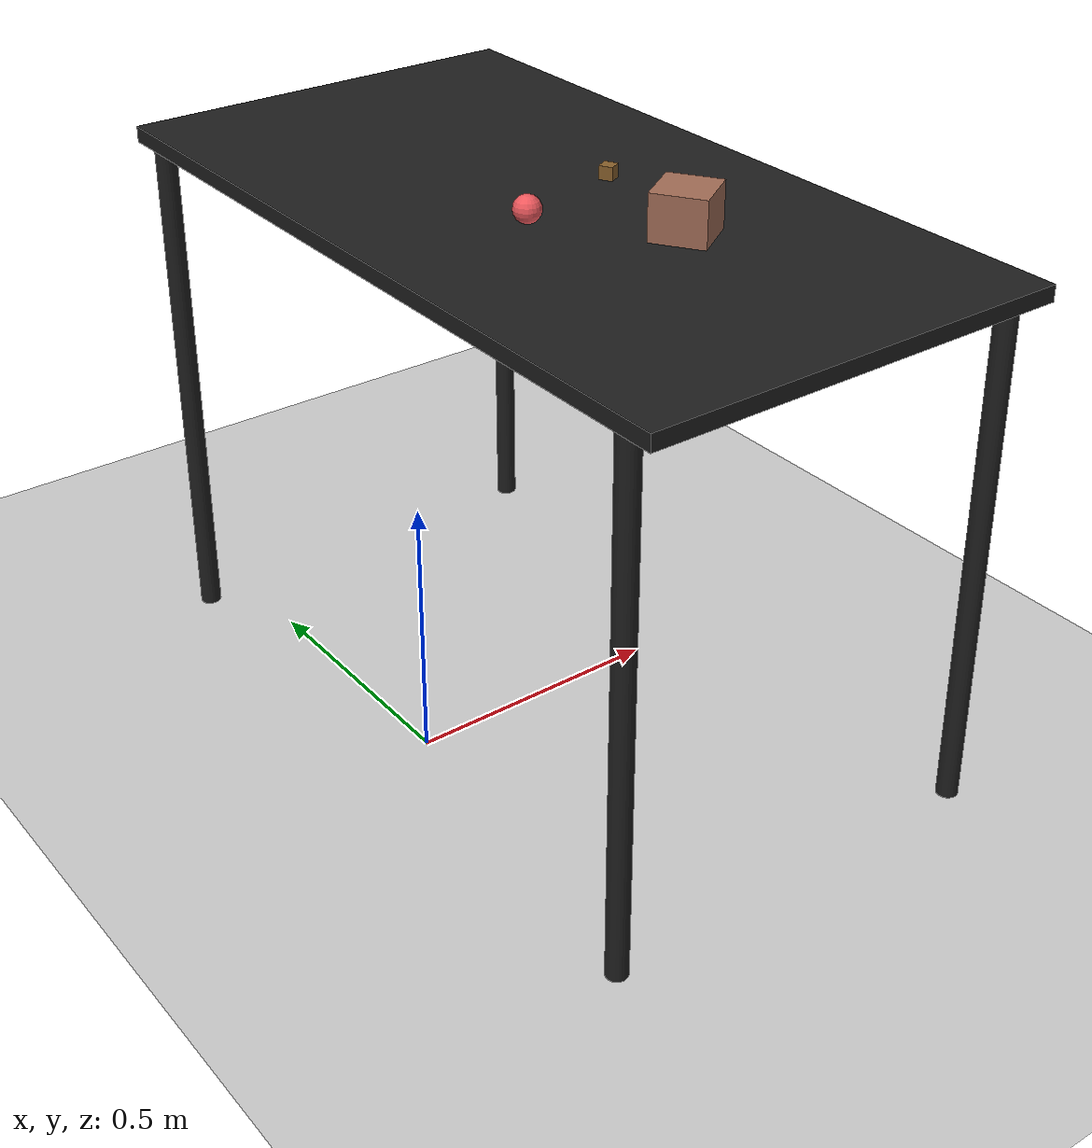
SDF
<?xml version="1.0" ?>
<sdf version="1.6">
  <world name="arm_world">
    <plugin filename="gz-sim-physics-system" name="gz::sim::systems::Physics">
      <engine>
        <filename>libgz-physics-bullet-featherstone-plugin.so</filename>
      </engine>
    </plugin>
    <plugin filename="gz-sim-user-commands-system" name="gz::sim::systems::UserCommands"/>
    <plugin filename="gz-sim-scene-broadcaster-system" name="gz::sim::systems::SceneBroadcaster"/>
    <plugin filename="gz-sim-sensors-system" name="gz::sim::systems::Sensors">
      <render_engine>ogre2</render_engine>
    </plugin>
    <gravity>0.0 0.0 -9.8</gravity>
    <scene>
      <shadows>false</shadows>
    </scene>
    <gui>
      <camera name="user_camera">
        <pose>0.75 -0.75 1.4 0 0.29 2.21</pose>
      </camera>
    </gui>
    <include>
      <uri>https://fuel.gazebosim.org/1.0/OpenRobotics/models/Sun</uri>
    </include>
    <model name="table">
      <static>true</static>
      <include>
        <uri>model://table</uri>
      </include>
      <pose>0.29 0 0 0 0 1.5708</pose>
    </model>
    <model name="ground_plane">
      <static>true</static>
      <link name="link">
        <collision name="collision">
          <geometry>
            <plane>
              <normal>0 0 1</normal>
            </plane>
          </geometry>
          <surface>
            <friction>
              <ode>
                <mu>1.0</mu>
                <mu2>1.0</mu2>
              </ode>
            </friction>
          </surface>
        </collision>
        <visual name="visual">
          <geometry>
            <plane>
              <normal>0 0 1</normal>
              <size>100 100</size>
            </plane>
          </geometry>
          <material>
            <ambient>0.8 0.8 0.8 1</ambient>
            <diffuse>0.8 0.8 0.8 1</diffuse>
            <specular>0.8 0.8 0.8 1</specular>
          </material>
        </visual>
      </link>
    </model>
    <model name="sphere_m_0">
      <pose>0.175 -0.088 1.05 0 0 0.05</pose>
      <link name="sphere_m_0_link">
        <inertial>
          <mass>0.05</mass>
          <inertia>
            <ixx>2.04e-7</ixx>
            <iyy>2.04e-7</iyy>
            <izz>3.9e-8</izz>
            <ixy>0</ixy>
            <ixz>0</ixz>
            <iyz>0</iyz>
          </inertia>
        </inertial>
        <collision name="sphere_m_0_collision">
          <geometry>
            <sphere>
              <radius>0.025</radius>
            </sphere>
          </geometry>
          <surface>
            <friction>
              <ode>
                <mu>0.8</mu>
                <mu2>0.8</mu2>
                <fdir1>0 0 1</fdir1>
                <slip1>0.001</slip1>
                <slip2>0.001</slip2>
              </ode>
              <torsional>
                <coefficient>0.1</coefficient>
                <surface_radius>0.015</surface_radius>
                <use_patch_radius>true</use_patch_radius>
              </torsional>
            </friction>
            <contact>
              <ode>
                <kp>1e5</kp>
                <kd>10</kd>
                <max_vel>0.1</max_vel>
                <min_depth>0.001</min_depth>
                <soft_cfm>0.01</soft_cfm>
                <soft_erp>0.2</soft_erp>
              </ode>
            </contact>
            <bounce>
              <restitution_coefficient>0.2</restitution_coefficient>
              <threshold>0.01</threshold>
            </bounce>
          </surface>
        </collision>
        <visual name="sphere_m_0_visual">
          <geometry>
            <sphere>
              <radius>0.025</radius>
            </sphere>
          </geometry>
          <material>
            <ambient>0.92 0.34 0.36 1</ambient>
            <diffuse>0.92 0.34 0.36 1</diffuse>
          </material>
        </visual>
        <velocity_decay>
          <linear>1</linear>
          <angular>1</angular>
        </velocity_decay>
      </link>
    </model>
    <model name="cube_l_1">
      <pose>0.363 -0.263 1.05 0 0 0.58</pose>
      <link name="cube_l_1_link">
        <inertial>
          <mass>0.05</mass>
          <inertia>
            <ixx>2.04e-7</ixx>
            <iyy>2.04e-7</iyy>
            <izz>3.9e-8</izz>
            <ixy>0</ixy>
            <ixz>0</ixz>
            <iyz>0</iyz>
          </inertia>
        </inertial>
        <collision name="cube_l_1_collision">
          <geometry>
            <box>
              <size>0.1 0.1 0.1</size>
            </box>
          </geometry>
          <surface>
            <friction>
              <ode>
                <mu>0.8</mu>
                <mu2>0.8</mu2>
                <fdir1>0 0 1</fdir1>
                <slip1>0.001</slip1>
                <slip2>0.001</slip2>
              </ode>
              <torsional>
                <coefficient>0.1</coefficient>
                <surface_radius>0.015</surface_radius>
                <use_patch_radius>true</use_patch_radius>
              </torsional>
            </friction>
            <contact>
              <ode>
                <kp>1e5</kp>
                <kd>10</kd>
                <max_vel>0.1</max_vel>
                <min_depth>0.001</min_depth>
                <soft_cfm>0.01</soft_cfm>
                <soft_erp>0.2</soft_erp>
              </ode>
            </contact>
            <bounce>
              <restitution_coefficient>0.2</restitution_coefficient>
              <threshold>0.01</threshold>
            </bounce>
          </surface>
        </collision>
        <visual name="cube_l_1_visual">
          <geometry>
            <box>
              <size>0.1 0.1 0.1</size>
            </box>
          </geometry>
          <material>
            <ambient>0.64 0.43 0.34 1</ambient>
            <diffuse>0.64 0.43 0.34 1</diffuse>
          </material>
        </visual>
        <velocity_decay>
          <linear>1</linear>
          <angular>1</angular>
        </velocity_decay>
      </link>
    </model>
    <model name="cube_s_2">
      <pose>0.344 -0.283 1.05 0 0 0.27</pose>
      <link name="cube_s_2_link">
        <inertial>
          <mass>0.05</mass>
          <inertia>
            <ixx>2.04e-7</ixx>
            <iyy>2.04e-7</iyy>
            <izz>3.9e-8</izz>
            <ixy>0</ixy>
            <ixz>0</ixz>
            <iyz>0</iyz>
          </inertia>
        </inertial>
        <collision name="cube_s_2_collision">
          <geometry>
            <box>
              <size>0.025 0.025 0.025</size>
            </box>
          </geometry>
          <surface>
            <friction>
              <ode>
                <mu>0.8</mu>
                <mu2>0.8</mu2>
                <fdir1>0 0 1</fdir1>
                <slip1>0.001</slip1>
                <slip2>0.001</slip2>
              </ode>
              <torsional>
                <coefficient>0.1</coefficient>
                <surface_radius>0.015</surface_radius>
                <use_patch_radius>true</use_patch_radius>
              </torsional>
            </friction>
            <contact>
              <ode>
                <kp>1e5</kp>
                <kd>10</kd>
                <max_vel>0.1</max_vel>
                <min_depth>0.001</min_depth>
                <soft_cfm>0.01</soft_cfm>
                <soft_erp>0.2</soft_erp>
              </ode>
            </contact>
            <bounce>
              <restitution_coefficient>0.2</restitution_coefficient>
              <threshold>0.01</threshold>
            </bounce>
          </surface>
        </collision>
        <visual name="cube_s_2_visual">
          <geometry>
            <box>
              <size>0.025 0.025 0.025</size>
            </box>
          </geometry>
          <material>
            <ambient>0.12 0.75 0.65 1</ambient>
            <diffuse>0.12 0.75 0.65 1</diffuse>
          </material>
        </visual>
        <velocity_decay>
          <linear>1</linear>
          <angular>1</angular>
        </velocity_decay>
      </link>
    </model>
    <model name="sphere_s_3">
      <pose>0.45 -0.191 1.05 0 0 3.05</pose>
      <link name="sphere_s_3_link">
        <inertial>
          <mass>0.05</mass>
          <inertia>
            <ixx>2.04e-7</ixx>
            <iyy>2.04e-7</iyy>
            <izz>3.9e-8</izz>
            <ixy>0</ixy>
            <ixz>0</ixz>
            <iyz>0</iyz>
          </inertia>
        </inertial>
        <collision name="sphere_s_3_collision">
          <geometry>
            <sphere>
              <radius>0.0125</radius>
            </sphere>
          </geometry>
          <surface>
            <friction>
              <ode>
                <mu>0.8</mu>
                <mu2>0.8</mu2>
                <fdir1>0 0 1</fdir1>
                <slip1>0.001</slip1>
                <slip2>0.001</slip2>
              </ode>
              <torsional>
                <coefficient>0.1</coefficient>
                <surface_radius>0.015</surface_radius>
                <use_patch_radius>true</use_patch_radius>
              </torsional>
            </friction>
            <contact>
              <ode>
                <kp>1e5</kp>
                <kd>10</kd>
                <max_vel>0.1</max_vel>
                <min_depth>0.001</min_depth>
                <soft_cfm>0.01</soft_cfm>
                <soft_erp>0.2</soft_erp>
              </ode>
            </contact>
            <bounce>
              <restitution_coefficient>0.2</restitution_coefficient>
              <threshold>0.01</threshold>
            </bounce>
          </surface>
        </collision>
        <visual name="sphere_s_3_visual">
          <geometry>
            <sphere>
              <radius>0.0125</radius>
            </sphere>
          </geometry>
          <material>
            <ambient>0.66 0.42 0.71 1</ambient>
            <diffuse>0.66 0.42 0.71 1</diffuse>
          </material>
        </visual>
        <velocity_decay>
          <linear>1</linear>
          <angular>1</angular>
        </velocity_decay>
      </link>
    </model>
    <model name="cube_s_4">
      <pose>0.387 -0.032 1.05 0 0 0.49</pose>
      <link name="cube_s_4_link">
        <inertial>
          <mass>0.05</mass>
          <inertia>
            <ixx>2.04e-7</ixx>
            <iyy>2.04e-7</iyy>
            <izz>3.9e-8</izz>
            <ixy>0</ixy>
            <ixz>0</ixz>
            <iyz>0</iyz>
          </inertia>
        </inertial>
        <collision name="cube_s_4_collision">
          <geometry>
            <box>
              <size>0.025 0.025 0.025</size>
            </box>
          </geometry>
          <surface>
            <friction>
              <ode>
                <mu>0.8</mu>
                <mu2>0.8</mu2>
                <fdir1>0 0 1</fdir1>
                <slip1>0.001</slip1>
                <slip2>0.001</slip2>
              </ode>
              <torsional>
                <coefficient>0.1</coefficient>
                <surface_radius>0.015</surface_radius>
                <use_patch_radius>true</use_patch_radius>
              </torsional>
            </friction>
            <contact>
              <ode>
                <kp>1e5</kp>
                <kd>10</kd>
                <max_vel>0.1</max_vel>
                <min_depth>0.001</min_depth>
                <soft_cfm>0.01</soft_cfm>
                <soft_erp>0.2</soft_erp>
              </ode>
            </contact>
            <bounce>
              <restitution_coefficient>0.2</restitution_coefficient>
              <threshold>0.01</threshold>
            </bounce>
          </surface>
        </collision>
        <visual name="cube_s_4_visual">
          <geometry>
            <box>
              <size>0.025 0.025 0.025</size>
            </box>
          </geometry>
          <material>
            <ambient>0.54 0.38 0.17 1</ambient>
            <diffuse>0.54 0.38 0.17 1</diffuse>
          </material>
        </visual>
        <velocity_decay>
          <linear>1</linear>
          <angular>1</angular>
        </velocity_decay>
      </link>
    </model>
  </world>
</sdf>

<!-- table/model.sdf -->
<sdf version="1.5">
  <model name="table">
    <static>true</static>
    <link name="link">
      <collision name="surface">
        <pose>0 0 1.0 0 0 0</pose>
        <geometry>
          <box>
            <size>1.5 0.8 0.03</size>
          </box>
        </geometry>
        <surface>
          <friction>
            <ode>
              <mu>0.6</mu>
              <mu2>0.6</mu2>
            </ode>
          </friction>
        </surface>
      </collision>
      <visual name="surface">
        <pose>0 0 1.0 0 0 0</pose>
        <geometry>
          <box>
            <size>1.5 0.8 0.03</size>
          </box>
        </geometry>
        <material>
          <script>
            <uri>file://media/materials/scripts/gazebo.material</uri>
            <name>Gazebo/Black</name>
          </script>
        </material>
      </visual>
      <collision name="front_left_leg">
        <pose>0.68 0.38 0.5 0 0 0</pose>
        <geometry>
          <cylinder>
            <radius>0.02</radius>
            <length>1.0</length>
          </cylinder>
        </geometry>
      </collision>
      <visual name="front_left_leg">
        <pose>0.68 0.38 0.5 0 0 0</pose>
        <geometry>
          <cylinder>
            <radius>0.02</radius>
            <length>1.0</length>
          </cylinder>
        </geometry>
        <material>
          <script>
            <uri>file://media/materials/scripts/gazebo.material</uri>
            <name>Gazebo/Black</name>
          </script>
        </material>
      </visual>
      <collision name="front_right_leg">
        <pose>0.68 -0.38 0.5 0 0 0</pose>
        <geometry>
          <cylinder>
            <radius>0.02</radius>
            <length>1.0</length>
          </cylinder>
        </geometry>
      </collision>
      <visual name="front_right_leg">
        <pose>0.68 -0.38 0.5 0 0 0</pose>
        <geometry>
          <cylinder>
            <radius>0.02</radius>
            <length>1.0</length>
          </cylinder>
        </geometry>
        <material>
          <script>
            <uri>file://media/materials/scripts/gazebo.material</uri>
            <name>Gazebo/Black</name>
          </script>
        </material>
      </visual>
      <collision name="back_right_leg">
        <pose>-0.68 -0.38 0.5 0 0 0</pose>
        <geometry>
          <cylinder>
            <radius>0.02</radius>
            <length>1.0</length>
          </cylinder>
        </geometry>
      </collision>
      <visual name="back_right_leg">
        <pose>-0.68 -0.38 0.5 0 0 0</pose>
        <geometry>
          <cylinder>
            <radius>0.02</radius>
            <length>1.0</length>
          </cylinder>
        </geometry>
        <material>
          <script>
            <uri>file://media/materials/scripts/gazebo.material</uri>
            <name>Gazebo/Black</name>
          </script>
        </material>
      </visual>
      <collision name="back_left_leg">
        <pose>-0.68 0.38 0.5 0 0 0</pose>
        <geometry>
          <cylinder>
            <radius>0.02</radius>
            <length>1.0</length>
          </cylinder>
        </geometry>
      </collision>
      <visual name="back_left_leg">
        <pose>-0.68 0.38 0.5 0 0 0</pose>
        <geometry>
          <cylinder>
            <radius>0.02</radius>
            <length>1.0</length>
          </cylinder>
        </geometry>
        <material>
          <script>
            <uri>file://media/materials/scripts/gazebo.material</uri>
            <name>Gazebo/Black</name>
          </script>
        </material>
      </visual>
    </link>
  </model>
</sdf>
